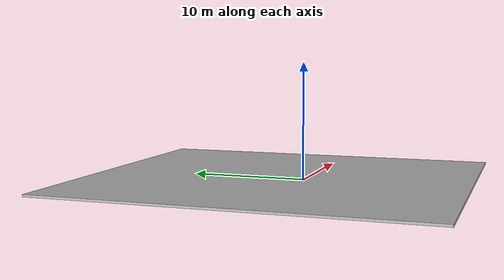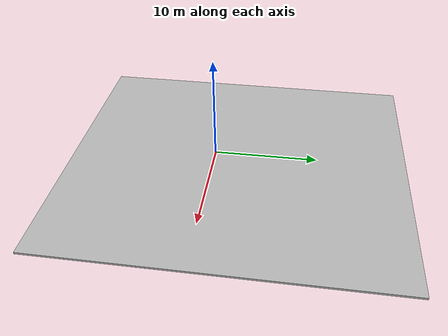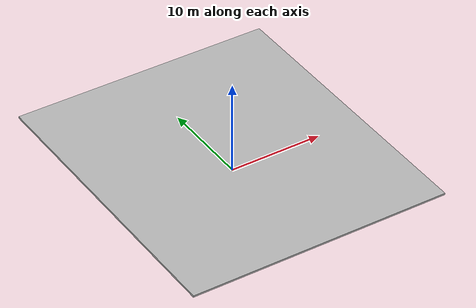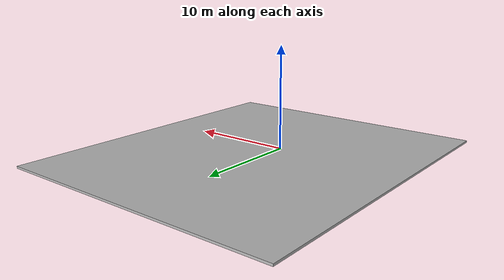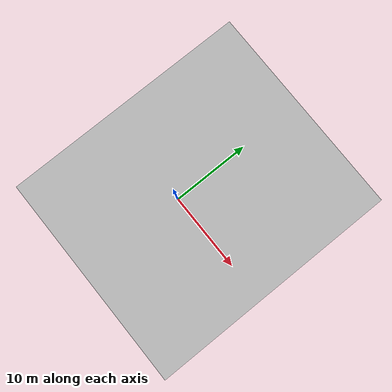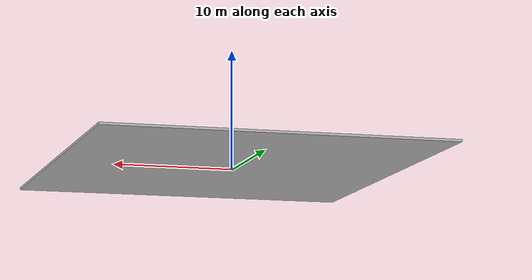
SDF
<?xml version="1.0"?>
<sdf version="1.5">

  <model name="ground">
    <pose>1 2.3 -.1 0 0 0</pose>
    <static>1</static>
    <link name="ground">
      <collision name="ground_coll">
        <geometry>
          <box>
            <size>28.36 32.64 .2</size>
          </box>
        </geometry>
        <surface>
          <contact>
            <collide_bitmask>0xffff</collide_bitmask>
          </contact>
          <friction>
            <ode>
              <mu>100</mu>
              <mu2>50</mu2>
            </ode>
          </friction>
        </surface>
      </collision>
      <visual name="ground_vis">
        <geometry>
          <box>
            <size>28.36 32.64 .2</size>
          </box>
        </geometry>
        <material>
          <script>
            <uri>model://ground/materials/car_test_map.material</uri>
            <name>car_test_map</name>
          </script>
        </material>
      </visual>
    </link>
  </model>
</sdf>
